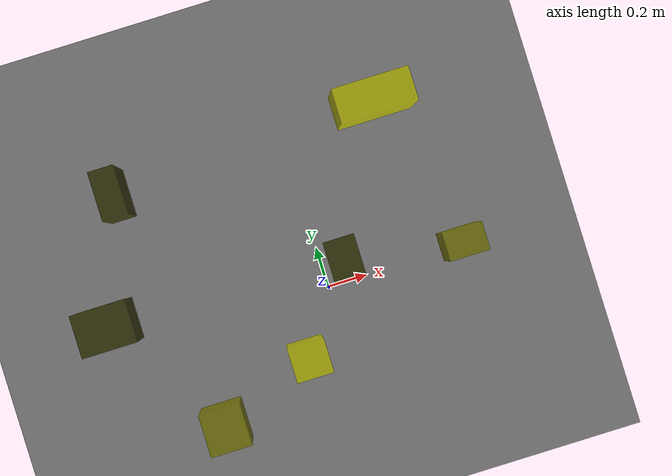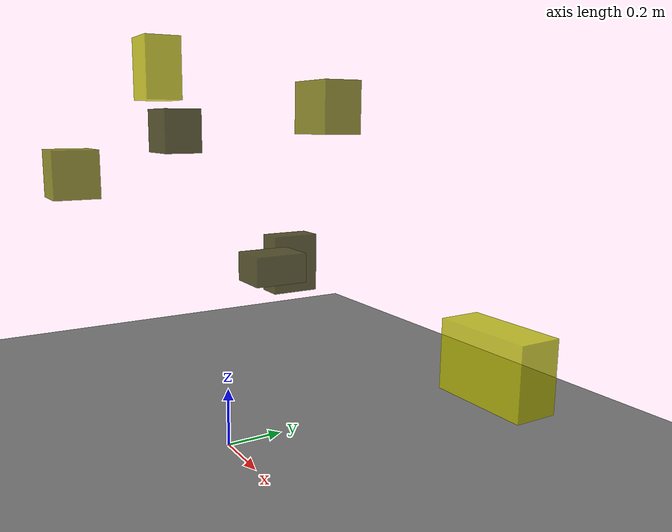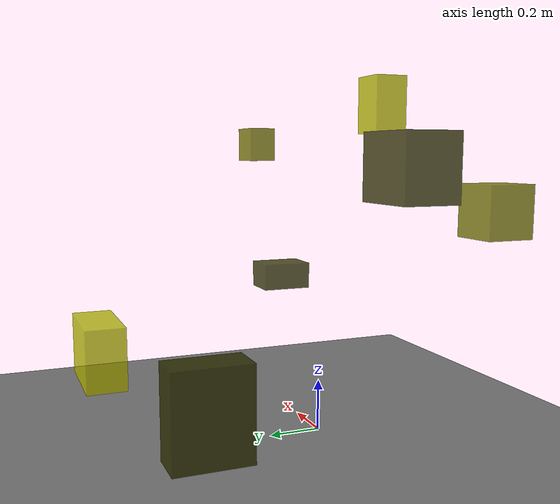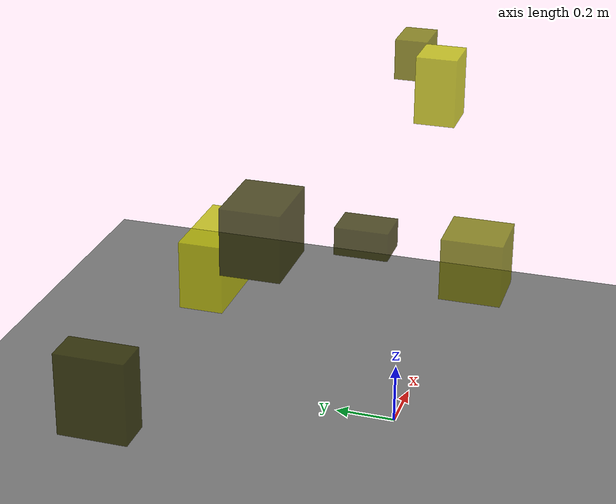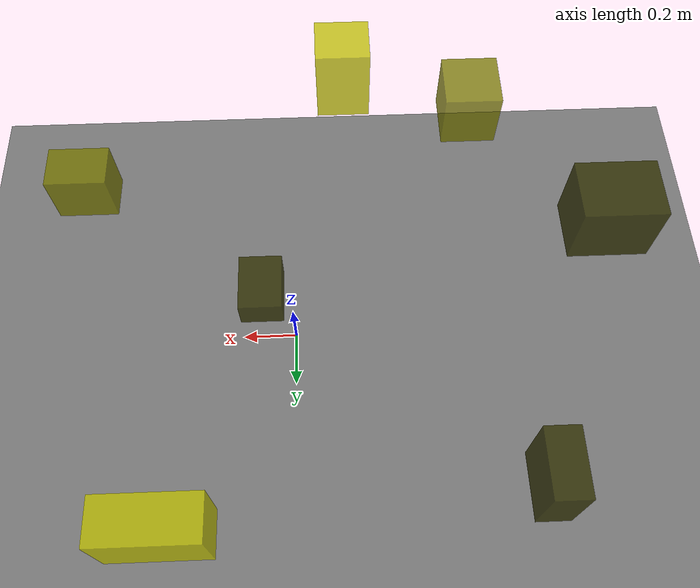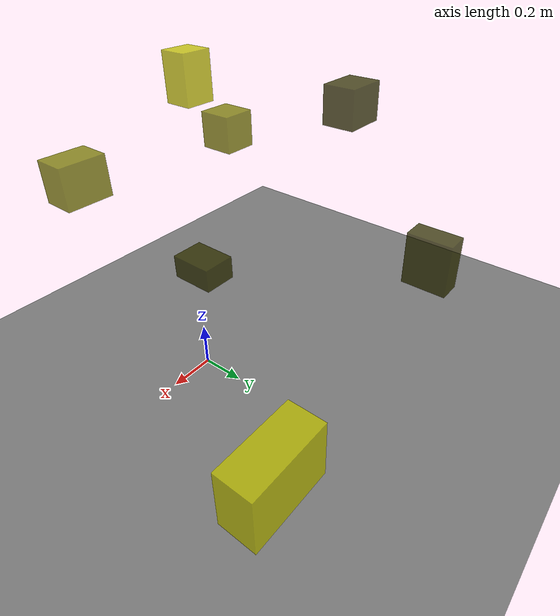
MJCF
<?xml version="1.0"?>
<mujoco model="obstacle_scene">
  <compiler angle="radian" coordinate="local"/>
  <option timestep="0.001" gravity="0 0 -9.81"/>

  <asset>
    <material name="obstacle_mat" rgba="0.8 0.8 0.0 0.8"/>
    <material name="ground_mat" rgba="0.5 0.5 0.5 1"/>
  </asset>

  <worldbody>
    <!-- Ground plane -->
    <geom name="ground" type="plane" size="3 3 0.1" material="ground_mat"/>

    <!-- Obstacles -->
    <body name="obstacle_0" pos="0.072031 0.130547 0.621158">
      <geom name="obs_0" type="box" size="0.066106 0.089182 0.047727" rgba="0.2 0.2 0.0 0.8"/>
    </body>
    <body name="obstacle_1" pos="-0.584817 -0.352882 0.898051">
      <geom name="obs_1" type="box" size="0.082761 0.084485 0.088672" rgba="0.5 0.5 0.0 0.8"/>
    </body>
    <body name="obstacle_2" pos="-0.193743 -0.148779 1.254188">
      <geom name="obs_2" type="box" size="0.066386 0.059451 0.100084" rgba="0.8 0.8 0.0 0.8"/>
    </body>
    <body name="obstacle_3" pos="-0.809748 0.697387 0.427977">
      <geom name="obs_3" type="box" size="0.057430 0.111310 0.134371" rgba="0.2 0.2 0.0 0.8"/>
    </body>
    <body name="obstacle_4" pos="0.473702 0.078392 1.121216">
      <geom name="obs_4" type="box" size="0.074958 0.053727 0.067773" rgba="0.5 0.5 0.0 0.8"/>
    </body>
    <body name="obstacle_5" pos="0.435495 0.780153 0.289082">
      <geom name="obs_5" type="box" size="0.178806 0.080268 0.127160" rgba="0.8 0.8 0.0 0.8"/>
    </body>
    <body name="obstacle_6" pos="-0.886484 0.163022 1.047145">
      <geom name="obs_6" type="box" size="0.106418 0.082510 0.093755" rgba="0.2 0.2 0.0 0.8"/>
    </body>
  </worldbody>
</mujoco>
